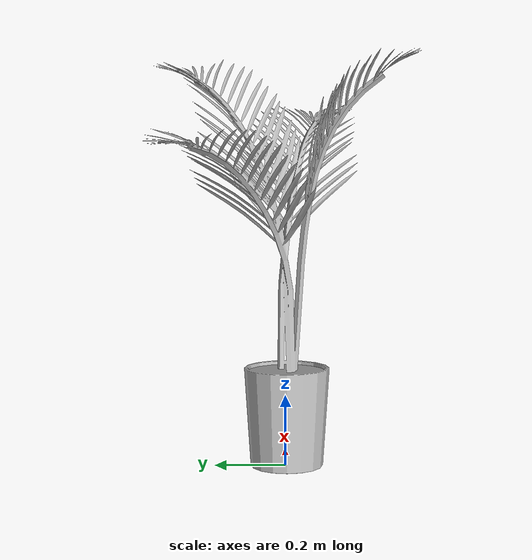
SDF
<?xml version='1.0'?>
<sdf version='1.4'>
  <model name='620'>
    <pose>0 0 0 0 0 0</pose>
    <static>true</static>
    <link name='link'>
      <collision name='collision'>
        <pose>0 0 0 0 0 0</pose>
        <geometry>
          <box>
            <size>0.999657 0.770188 2</size>
          </box>
        </geometry>
      </collision>
      <visual name='visual'>
        <pose>0 0 0 0 0 0</pose>
        <geometry>
          <mesh><uri>model://620/620.dae</uri></mesh>
        </geometry>
      </visual>
    </link>
  </model>
</sdf>
